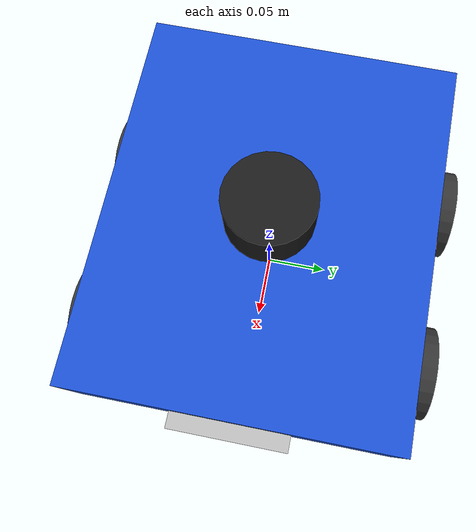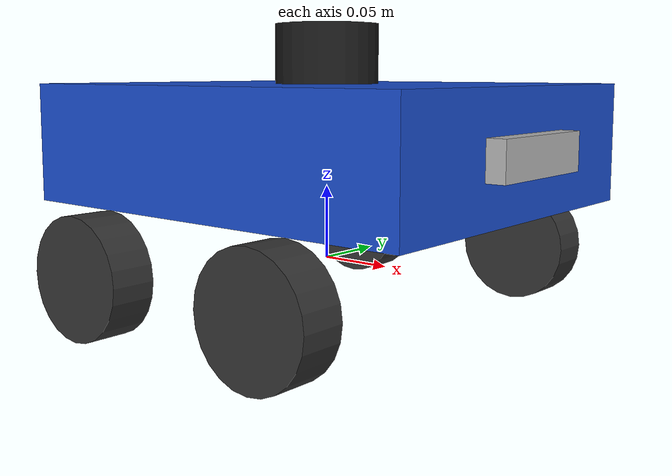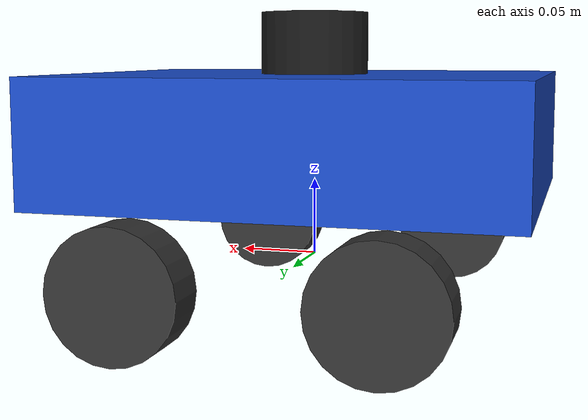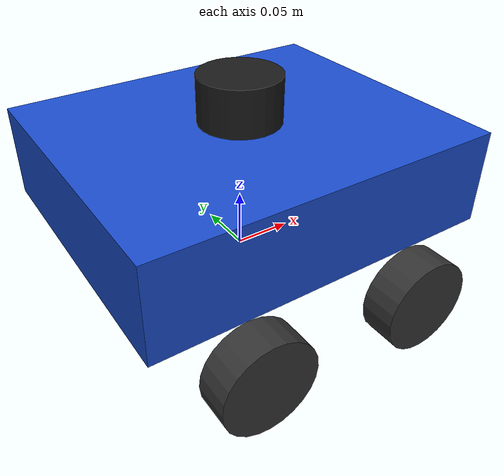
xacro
<robot xmlns:xacro="http://www.ros.org/wiki/xacro" name="robocept">

  <!-- ============== Properties ============== -->
  <xacro:property name="chassis_length" value="0.30"/>
  <xacro:property name="chassis_width" value="0.25"/>
  <xacro:property name="chassis_height" value="0.08"/>
  <xacro:property name="chassis_mass" value="3.0"/>

  <xacro:property name="wheel_radius" value="0.04"/>
  <xacro:property name="wheel_width" value="0.03"/>
  <xacro:property name="wheel_mass" value="0.2"/>
  <xacro:property name="wheel_separation" value="0.28"/>

  <!-- ============== Macros ============== -->
  <xacro:macro name="inertial_box" params="mass x y z">
    <inertial>
      <mass value="${mass}"/>
      <inertia ixx="${mass*(y*y+z*z)/12}" ixy="0" ixz="0"
               iyy="${mass*(x*x+z*z)/12}" iyz="0"
               izz="${mass*(x*x+y*y)/12}"/>
    </inertial>
  </xacro:macro>

  <xacro:macro name="inertial_cylinder" params="mass r l">
    <inertial>
      <mass value="${mass}"/>
      <inertia ixx="${mass*(3*r*r+l*l)/12}" ixy="0" ixz="0"
               iyy="${mass*(3*r*r+l*l)/12}" iyz="0"
               izz="${mass*r*r/2}"/>
    </inertial>
  </xacro:macro>

  <xacro:macro name="wheel" params="name x_offset y_offset">
    <link name="${name}_wheel_link">
      <visual>
        <geometry>
          <cylinder radius="${wheel_radius}" length="${wheel_width}"/>
        </geometry>
        <material name="dark_grey">
          <color rgba="0.2 0.2 0.2 1"/>
        </material>
      </visual>
      <collision>
        <geometry>
          <cylinder radius="${wheel_radius}" length="${wheel_width}"/>
        </geometry>
      </collision>
      <xacro:inertial_cylinder mass="${wheel_mass}" r="${wheel_radius}" l="${wheel_width}"/>
    </link>
    <joint name="${name}_wheel_joint" type="continuous">
      <parent link="base_link"/>
      <child link="${name}_wheel_link"/>
      <origin xyz="${x_offset} ${y_offset} 0" rpy="${-pi/2} 0 0"/>
      <axis xyz="0 0 1"/>
    </joint>
  </xacro:macro>

  <!-- ============== Base ============== -->
  <link name="base_footprint"/>

  <link name="base_link">
    <visual>
      <geometry>
        <box size="${chassis_length} ${chassis_width} ${chassis_height}"/>
      </geometry>
      <origin xyz="0 0 ${chassis_height/2 + wheel_radius}"/>
      <material name="blue">
        <color rgba="0.1 0.3 0.8 1"/>
      </material>
    </visual>
    <collision>
      <geometry>
        <box size="${chassis_length} ${chassis_width} ${chassis_height}"/>
      </geometry>
      <origin xyz="0 0 ${chassis_height/2 + wheel_radius}"/>
    </collision>
    <xacro:inertial_box mass="${chassis_mass}"
                        x="${chassis_length}" y="${chassis_width}" z="${chassis_height}"/>
  </link>

  <joint name="base_footprint_joint" type="fixed">
    <parent link="base_footprint"/>
    <child link="base_link"/>
    <origin xyz="0 0 0" rpy="0 0 0"/>
  </joint>

  <!-- ============== Wheels ============== -->
  <xacro:wheel name="front_left"  x_offset="${chassis_length/4}"  y_offset="${wheel_separation/2}"/>
  <xacro:wheel name="front_right" x_offset="${chassis_length/4}"  y_offset="${-wheel_separation/2}"/>
  <xacro:wheel name="rear_left"   x_offset="${-chassis_length/4}" y_offset="${wheel_separation/2}"/>
  <xacro:wheel name="rear_right"  x_offset="${-chassis_length/4}" y_offset="${-wheel_separation/2}"/>

  <!-- ============== LiDAR ============== -->
  <link name="robocept_lidar_frame">
    <visual>
      <geometry>
        <cylinder radius="0.035" length="0.04"/>
      </geometry>
      <material name="black">
        <color rgba="0.1 0.1 0.1 1"/>
      </material>
    </visual>
    <collision>
      <geometry>
        <cylinder radius="0.035" length="0.04"/>
      </geometry>
    </collision>
    <xacro:inertial_cylinder mass="0.15" r="0.035" l="0.04"/>
  </link>

  <joint name="base_to_lidar" type="fixed">
    <parent link="base_link"/>
    <child link="robocept_lidar_frame"/>
    <origin xyz="0.0 0.0 ${chassis_height + wheel_radius + 0.02}" rpy="0 0 0"/>
  </joint>

  <!-- ============== Camera ============== -->
  <link name="camera_link">
    <visual>
      <geometry>
        <box size="0.025 0.09 0.025"/>
      </geometry>
      <material name="silver">
        <color rgba="0.7 0.7 0.7 1"/>
      </material>
    </visual>
    <collision>
      <geometry>
        <box size="0.025 0.09 0.025"/>
      </geometry>
    </collision>
    <xacro:inertial_box mass="0.072" x="0.025" y="0.09" z="0.025"/>
  </link>

  <joint name="base_to_camera" type="fixed">
    <parent link="base_link"/>
    <child link="camera_link"/>
    <origin xyz="${chassis_length/2} 0 ${chassis_height/2 + wheel_radius}" rpy="0 0 0"/>
  </joint>

  <link name="camera_color_optical_frame"/>
  <joint name="camera_optical_joint" type="fixed">
    <parent link="camera_link"/>
    <child link="camera_color_optical_frame"/>
    <origin xyz="0 0 0" rpy="${-pi/2} 0 ${-pi/2}"/>
  </joint>

  <!-- ============== Ignition Gazebo Plugins ============== -->

  <!-- Diff-drive controller (publishes on Ignition topics, bridged to ROS) -->
  <gazebo>
    <plugin filename="ignition-gazebo-diff-drive-system" name="ignition::gazebo::systems::DiffDrive">
      <left_joint>front_left_wheel_joint</left_joint>
      <left_joint>rear_left_wheel_joint</left_joint>
      <right_joint>front_right_wheel_joint</right_joint>
      <right_joint>rear_right_wheel_joint</right_joint>
      <wheel_separation>${wheel_separation}</wheel_separation>
      <wheel_radius>${wheel_radius}</wheel_radius>
      <max_linear_acceleration>2.0</max_linear_acceleration>
      <odom_publish_frequency>20</odom_publish_frequency>
      <topic>cmd_vel</topic>
      <odom_topic>odom</odom_topic>
      <tf_topic>tf</tf_topic>
      <frame_id>odom</frame_id>
      <child_frame_id>base_footprint</child_frame_id>
    </plugin>
  </gazebo>

  <!-- LiDAR sensor (GPU lidar in Ignition) -->
  <gazebo reference="robocept_lidar_frame">
    <sensor name="rplidar" type="gpu_lidar">
      <always_on>true</always_on>
      <update_rate>10</update_rate>
      <visualize>true</visualize>
      <topic>lidar/scan</topic>
      <lidar>
        <scan>
          <horizontal>
            <samples>360</samples>
            <resolution>1</resolution>
            <min_angle>-3.14159</min_angle>
            <max_angle>3.14159</max_angle>
          </horizontal>
          <vertical>
            <samples>1</samples>
            <resolution>1</resolution>
            <min_angle>0</min_angle>
            <max_angle>0</max_angle>
          </vertical>
        </scan>
        <range>
          <min>0.15</min>
          <max>12.0</max>
          <resolution>0.01</resolution>
        </range>
        <noise>
          <type>gaussian</type>
          <mean>0.0</mean>
          <stddev>0.01</stddev>
        </noise>
      </lidar>
    </sensor>
  </gazebo>

  <!-- RGBD Camera (color + depth) -->
  <gazebo reference="camera_link">
    <sensor name="realsense" type="rgbd_camera">
      <always_on>true</always_on>
      <update_rate>15</update_rate>
      <topic>camera</topic>
      <camera>
        <horizontal_fov>1.2112</horizontal_fov>
        <image>
          <width>640</width>
          <height>480</height>
          <format>R8G8B8</format>
        </image>
        <clip>
          <near>0.1</near>
          <far>10.0</far>
        </clip>
        <depth_camera>
          <clip>
            <near>0.1</near>
            <far>10.0</far>
          </clip>
        </depth_camera>
        <noise>
          <type>gaussian</type>
          <mean>0.0</mean>
          <stddev>0.007</stddev>
        </noise>
      </camera>
    </sensor>
  </gazebo>

  <!-- Wheel friction -->
  <gazebo reference="front_left_wheel_link">
    <mu1>1.0</mu1><mu2>1.0</mu2>
  </gazebo>
  <gazebo reference="front_right_wheel_link">
    <mu1>1.0</mu1><mu2>1.0</mu2>
  </gazebo>
  <gazebo reference="rear_left_wheel_link">
    <mu1>1.0</mu1><mu2>1.0</mu2>
  </gazebo>
  <gazebo reference="rear_right_wheel_link">
    <mu1>1.0</mu1><mu2>1.0</mu2>
  </gazebo>

</robot>
